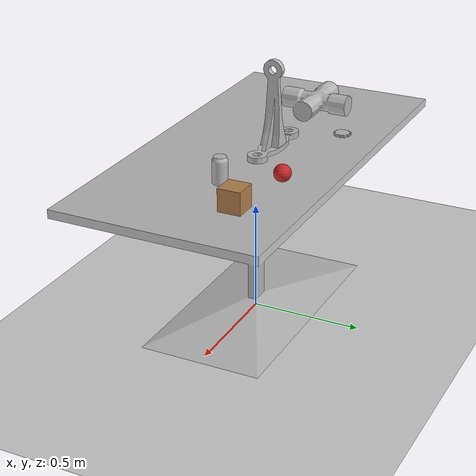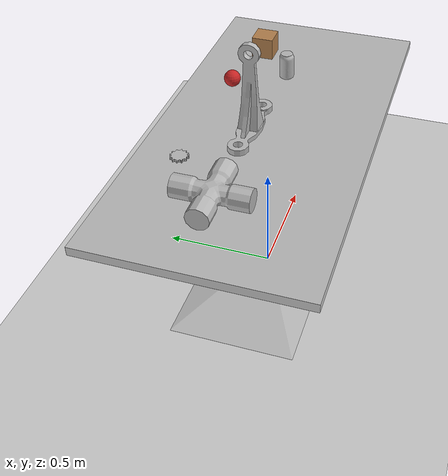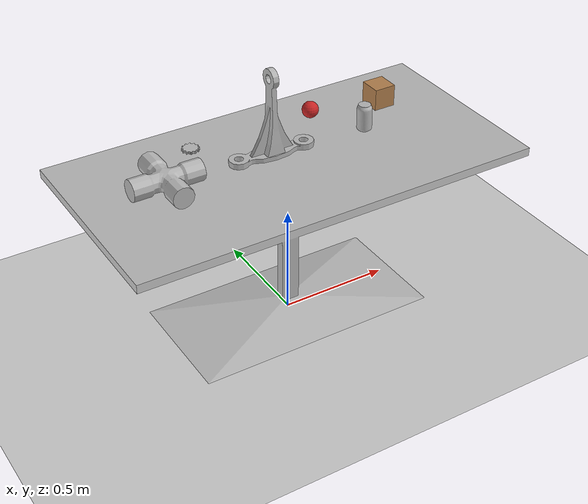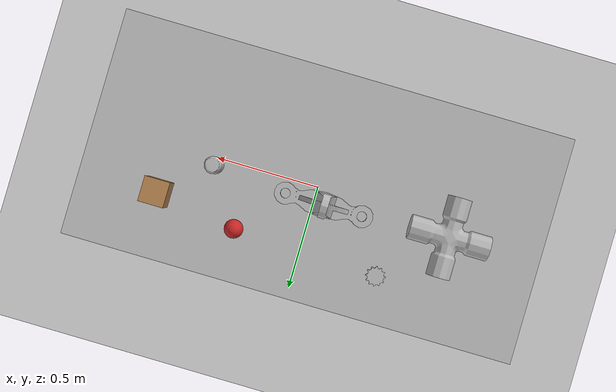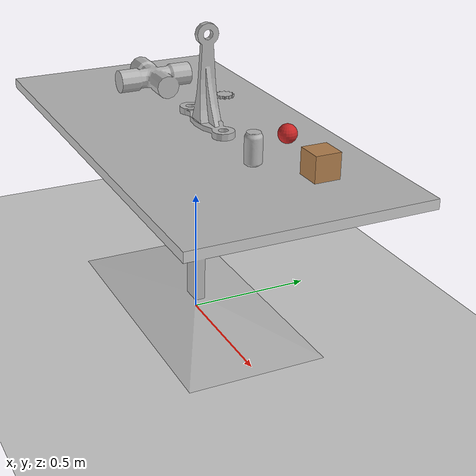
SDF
<sdf version="1.7">
 <world name="default">
  <light name="sun" type="directional">
   <pose>0 0 10 0 -0 0</pose>
   <diffuse>0.8 0.8 0.8 1</diffuse>
   <specular>0.2 0.2 0.2 1</specular>
   <attenuation>
    <range>1000</range>
    <constant>0.9</constant>
    <linear>0.01</linear>
    <quadratic>0.001</quadratic>
   </attenuation>
   <direction>-0.5 0.1 -0.9</direction>
   <spot><inner_angle>0</inner_angle><outer_angle>0</outer_angle><falloff>0</falloff></spot>
  </light>
  <model name="ground_plane">
   <static>1</static>
   <link name="link">
    <collision name="collision">
     <geometry><plane><normal>0 0 1</normal><size>100 100</size></plane></geometry>
     <surface><friction><ode><mu>100</mu><mu2>50</mu2></ode></friction></surface>
    </collision>
    <visual name="visual">
     <cast_shadows>0</cast_shadows>
     <geometry><plane><normal>0 0 1</normal><size>100 100</size></plane></geometry>
     <material>
      <script><uri>file://media/materials/scripts/gazebo.material</uri><name>Gazebo/Grey</name></script>
     </material>
    </visual>
   </link>
  </model>
  <gravity>0 0 -9.8</gravity>
  <magnetic_field>6e-06 2.3e-05 -4.2e-05</magnetic_field>
  <atmosphere type="adiabatic"/>
  <physics name="default_physics" default="0" type="ode">
   <max_step_size>0.001</max_step_size>
   <real_time_factor>1</real_time_factor>
   <real_time_update_rate>1000</real_time_update_rate>
  </physics>
  <scene><ambient>0.4 0.4 0.4 1</ambient><background>0.7 0.7 0.7 1</background><shadows>1</shadows></scene>
  <spherical_coordinates>
   <surface_model>EARTH_WGS84</surface_model>
   <latitude_deg>0</latitude_deg>
   <longitude_deg>0</longitude_deg>
   <elevation>0</elevation>
   <heading_deg>0</heading_deg>
  </spherical_coordinates>
  <model name="cafe_table">
   <static>1</static>
   <link name="link">
    <collision name="surface">
     <pose>0 0 0.755 0 -0 0</pose>
     <geometry><box><size>0.913 0.913 0.04</size></box></geometry>
    </collision>
    <collision name="column">
     <pose>0 0 0.37 0 -0 0</pose>
     <geometry><box><size>0.042 0.042 0.74</size></box></geometry>
    </collision>
    <collision name="base">
     <pose>0 0 0.02 0 -0 0</pose>
     <geometry><box><size>0.56 0.56 0.04</size></box></geometry>
    </collision>
    <visual name="visual">
     <geometry><mesh><uri>model://cafe_table/meshes/cafe_table.dae</uri><scale>2 1 1</scale></mesh></geometry>
    </visual>
   </link>
  </model>
  <model name="cricket_ball">
   <link name="link">
    <pose>0 0 0.0375 0 -0 0</pose>
    <inertial>
     <mass>0.1467</mass>
     <inertia>
      <ixx>8.25187e-05</ixx>
      <ixy>0</ixy>
      <ixz>0</ixz>
      <iyy>8.25187e-05</iyy>
      <iyz>0</iyz>
      <izz>8.25187e-05</izz>
     </inertia>
    </inertial>
    <collision name="collision">
     <geometry><sphere><radius>0.0375</radius></sphere></geometry>
     <surface>
      <contact>
       <poissons_ratio>0.347</poissons_ratio>
       <elastic_modulus>8.8e+09</elastic_modulus>
       <ode><kp>100000</kp><kd>100</kd><max_vel>100</max_vel><min_depth>0.001</min_depth></ode>
      </contact>
      <friction>
       <torsional>
        <coefficient>1</coefficient>
        <use_patch_radius>0</use_patch_radius>
        <surface_radius>0.01</surface_radius>
       </torsional>
      </friction>
     </surface>
    </collision>
    <visual name="visual">
     <geometry><sphere><radius>0.0375</radius></sphere></geometry>
     <material>
      <script><uri>file://media/materials/scripts/gazebo.material</uri><name>Gazebo/Red</name></script>
     </material>
    </visual>
    <velocity_decay><linear>0</linear><angular>0.005</angular></velocity_decay>
   </link>
   <pose>0.266699 0.249817 0.773986 0 -0 0</pose>
  </model>
  <model name="coke_can">
   <link name="link">
    <inertial>
     <pose>0 0 0.06 0 -0 0</pose>
     <mass>0.39</mass>
     <inertia>
      <ixx>0.00055575</ixx>
      <ixy>0</ixy>
      <ixz>0</ixz>
      <iyy>0.00055575</iyy>
      <iyz>0</iyz>
      <izz>0.0001755</izz>
     </inertia>
    </inertial>
    <collision name="collision">
     <pose>0.003937 0.004724 -0.18 0 -0 0</pose>
     <geometry><mesh><uri>model://coke_can/meshes/coke_can.dae</uri></mesh></geometry>
     <surface>
      <friction><ode><mu>1</mu><mu2>1</mu2></ode></friction>
      <contact><ode><kp>1e+07</kp><kd>1</kd><min_depth>0.001</min_depth><max_vel>0.1</max_vel></ode></contact>
     </surface>
    </collision>
    <visual name="visual">
     <pose>0.003937 0.004724 -0.18 0 -0 0</pose>
     <geometry><mesh><uri>model://coke_can/meshes/coke_can.dae</uri></mesh></geometry>
    </visual>
   </link>
   <pose>0.406661 0.035 0.772399 -0.013677 -0.011373 0.00315</pose>
  </model>
  <model name="wood_cube_10cm">
   <link name="link">
    <pose>0 0 0.05 0 -0 0</pose>
    <inertial>
     <mass>0.5167</mass>
     <inertia>
      <ixx>0.000861167</ixx>
      <ixy>0</ixy>
      <ixz>0</ixz>
      <iyy>0.000861167</iyy>
      <iyz>0</iyz>
      <izz>0.000861167</izz>
     </inertia>
    </inertial>
    <collision name="collision">
     <geometry><box><size>0.1 0.1 0.1</size></box></geometry>
     <surface>
      <contact>
       <poissons_ratio>0.347</poissons_ratio>
       <elastic_modulus>8.8e+09</elastic_modulus>
       <ode><kp>100000</kp><kd>100</kd><max_vel>100</max_vel><min_depth>0.001</min_depth></ode>
      </contact>
      <friction>
       <torsional>
        <coefficient>1</coefficient>
        <use_patch_radius>0</use_patch_radius>
        <surface_radius>0.01</surface_radius>
       </torsional>
      </friction>
     </surface>
    </collision>
    <visual name="visual">
     <geometry><box><size>0.1 0.1 0.1</size></box></geometry>
     <material>
      <script><uri>file://media/materials/scripts/gazebo.material</uri><name>Gazebo/Wood</name></script>
     </material>
    </visual>
   </link>
   <pose>0.592111 0.195894 0.773987 0 -0 0</pose>
  </model>
  <model name="t_brace_part">
   <link name="link">
    <inertial>
     <pose>0.22079 0 0.04663 0 -0 0</pose>
     <mass>0.5</mass>
     <inertia>
      <ixx>0.00698181</ixx>
      <ixy>0</ixy>
      <ixz>0</ixz>
      <iyy>0.00703473</iyy>
      <iyz>0</iyz>
      <izz>0.0132918</izz>
     </inertia>
    </inertial>
    <collision name="collision1">
     <pose>0.02115 0 0.04663 0 -0 0</pose>
     <geometry><box><size>0.02038 0.39858 0.09326</size></box></geometry>
    </collision>
    <collision name="collision2">
     <pose>0.22079 0 0.05013 0 -0 0</pose>
     <geometry><box><size>0.40017 0.02038 0.0866</size></box></geometry>
    </collision>
    <collision name="collision3">
     <pose>0.09895 0 0.05013 0 -0 0</pose>
     <geometry><box><size>0.13997 0.11302 0.0866</size></box></geometry>
    </collision>
    <visual name="visual">
     <geometry><mesh><uri>model://t_brace_part/meshes/t_brace.dae</uri></mesh></geometry>
     <material>
      <script>
       <uri>model://arm_part/materials/scripts</uri>
       <uri>model://arm_part/materials/textures</uri>
       <name>ArmPart/Diffuse</name>
      </script>
     </material>
    </visual>
   </link>
   <pose>-0.042154 0.013318 0.764039 -2.24622 -1.57079 0.660532</pose>
  </model>
  <model name="gear_part">
   <link name="link">
    <inertial>
     <pose>0 0 0.005875 0 -0 0</pose>
     <mass>0.5</mass>
     <inertia>
      <ixx>0.000198203</ixx>
      <ixy>0</ixy>
      <ixz>0</ixz>
      <iyy>0.000198203</iyy>
      <iyz>0</iyz>
      <izz>0.000384405</izz>
     </inertia>
    </inertial>
    <collision name="collision">
     <pose>0 0 0.005875 0 -0 0</pose>
     <geometry><cylinder><length>0.012</length><radius>0.0392125</radius></cylinder></geometry>
     <surface><contact><ode><max_vel>0.1</max_vel><min_depth>0.001</min_depth></ode></contact></surface>
    </collision>
    <visual name="visual">
     <geometry><mesh><uri>model://gear_part/meshes/gear.dae</uri><scale>0.25 0.25 0.25</scale></mesh></geometry>
     <material>
      <script>
       <uri>model://arm_part/materials/scripts</uri>
       <uri>model://arm_part/materials/textures</uri>
       <name>ArmPart/Diffuse</name>
      </script>
     </material>
    </visual>
   </link>
   <pose>-0.313607 0.273681 0.77443 -2e-06 2e-06 -0</pose>
  </model>
  <model name="cross_joint_part">
   <link name="link">
    <inertial>
     <pose>0 0 0.048275 0 -0 0</pose>
     <mass>0.5</mass>
     <inertia>
      <ixx>0.00455435</ixx>
      <ixy>0</ixy>
      <ixz>0</ixz>
      <iyy>0.00455435</iyy>
      <iyz>0</iyz>
      <izz>0.00833187</izz>
     </inertia>
    </inertial>
    <collision name="collisionY">
     <pose>0 0 0.048275 1.5707 -0 0</pose>
     <geometry><cylinder><length>0.3162</length><radius>0.0483</radius></cylinder></geometry>
    </collision>
    <collision name="collisionX">
     <pose>0 0 0.048275 0 1.5707 0</pose>
     <geometry><cylinder><length>0.3162</length><radius>0.0483</radius></cylinder></geometry>
    </collision>
    <visual name="visual">
     <geometry><mesh><uri>model://cross_joint_part/meshes/cross_joint.dae</uri></mesh></geometry>
     <material>
      <script>
       <uri>model://arm_part/materials/scripts</uri>
       <uri>model://arm_part/materials/textures</uri>
       <name>ArmPart/Diffuse</name>
      </script>
     </material>
    </visual>
   </link>
   <pose>-0.539817 0.048419 0.775023 8.2e-05 0.000111 0</pose>
  </model>
 </world>
</sdf>
